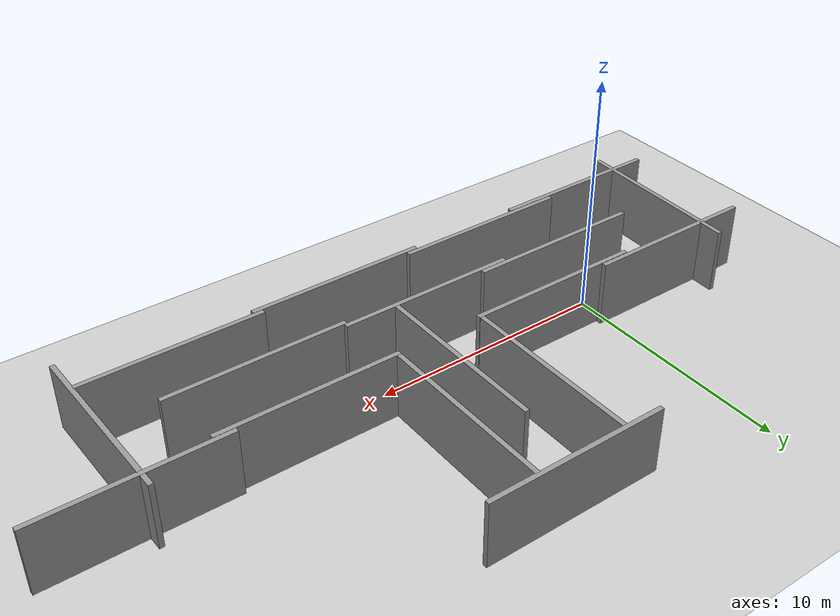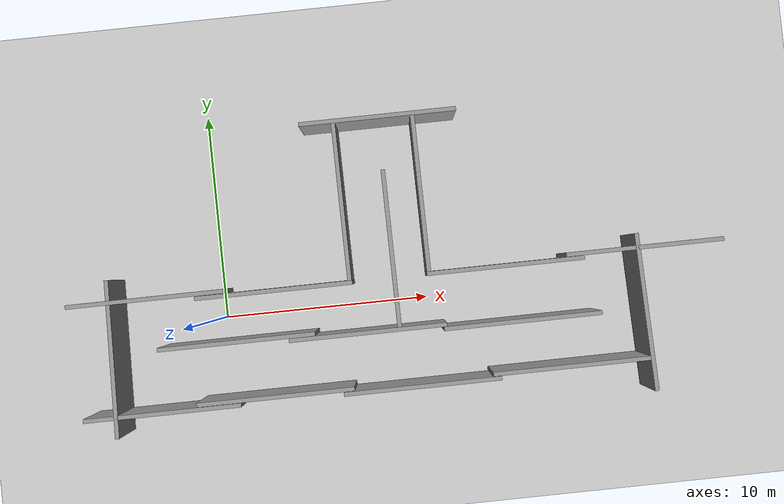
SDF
<sdf version="1.7">
 <world name="default">
  <light name="sun" type="directional">
   <pose>0 0 10 0 -0 0</pose>
   <diffuse>0.8 0.8 0.8 1</diffuse>
   <specular>0.2 0.2 0.2 1</specular>
   <attenuation>
    <range>1000</range>
    <constant>0.9</constant>
    <linear>0.01</linear>
    <quadratic>0.001</quadratic>
   </attenuation>
   <direction>-0.5 0.1 -0.9</direction>
   <spot><inner_angle>0</inner_angle><outer_angle>0</outer_angle><falloff>0</falloff></spot>
  </light>
  <model name="ground_plane">
   <static>1</static>
   <link name="link">
    <collision name="collision">
     <geometry><plane><normal>0 0 1</normal><size>100 100</size></plane></geometry>
     <surface>
      <contact><collide_bitmask>65535</collide_bitmask></contact>
      <friction><ode><mu>100</mu><mu2>50</mu2></ode></friction>
     </surface>
    </collision>
    <visual name="visual">
     <cast_shadows>0</cast_shadows>
     <geometry><plane><normal>0 0 1</normal><size>100 100</size></plane></geometry>
     <material>
      <script><uri>file://media/materials/scripts/gazebo.material</uri><name>Gazebo/Grey</name></script>
     </material>
    </visual>
   </link>
  </model>
  <gravity>0 0 -9.8</gravity>
  <magnetic_field>6e-06 2.3e-05 -4.2e-05</magnetic_field>
  <atmosphere type="adiabatic"/>
  <physics type="ode">
   <max_step_size>0.001</max_step_size>
   <real_time_factor>1</real_time_factor>
   <real_time_update_rate>1000</real_time_update_rate>
  </physics>
  <scene><ambient>0.4 0.4 0.4 1</ambient><background>0.7 0.7 0.7 1</background><shadows>1</shadows></scene>
  <spherical_coordinates>
   <surface_model>EARTH_WGS84</surface_model>
   <latitude_deg>0</latitude_deg>
   <longitude_deg>0</longitude_deg>
   <elevation>0</elevation>
   <heading_deg>0</heading_deg>
  </spherical_coordinates>
  <model name="grey_wall">
   <static>1</static>
   <link name="link">
    <pose>0 0 1.4 0 -0 0</pose>
    <collision name="collision"><geometry><box><size>7.5 0.2 2.8</size></box></geometry></collision>
    <visual name="visual">
     <cast_shadows>0</cast_shadows>
     <geometry><box><size>7.5 0.2 2.8</size></box></geometry>
     <material>
      <script>
       <uri>model://grey_wall/materials/scripts</uri>
       <uri>model://grey_wall/materials/textures</uri>
       <name>vrc/grey_wall</name>
      </script>
     </material>
    </visual>
   </link>
   <pose>2.73981 1.11385 0 0 -0 0</pose>
  </model>
  <model name="grey_wall_0">
   <static>1</static>
   <link name="link">
    <pose>0 0 1.4 0 -0 0</pose>
    <collision name="collision"><geometry><box><size>7.5 0.2 2.8</size></box></geometry></collision>
    <visual name="visual">
     <cast_shadows>0</cast_shadows>
     <geometry><box><size>7.5 0.2 2.8</size></box></geometry>
     <material>
      <script>
       <uri>model://grey_wall/materials/scripts</uri>
       <uri>model://grey_wall/materials/textures</uri>
       <name>vrc/grey_wall</name>
      </script>
     </material>
    </visual>
   </link>
   <pose>0.744778 -1.12185 0 0 -0 0</pose>
  </model>
  <model name="grey_wall_1">
   <static>1</static>
   <link name="link">
    <pose>0 0 1.4 0 -0 0</pose>
    <collision name="collision"><geometry><box><size>7.5 0.2 2.8</size></box></geometry></collision>
    <visual name="visual">
     <cast_shadows>0</cast_shadows>
     <geometry><box><size>7.5 0.2 2.8</size></box></geometry>
     <material>
      <script>
       <uri>model://grey_wall/materials/scripts</uri>
       <uri>model://grey_wall/materials/textures</uri>
       <name>vrc/grey_wall</name>
      </script>
     </material>
    </visual>
   </link>
   <pose>6.98572 -1.32438 0 0 -0 0</pose>
  </model>
  <model name="grey_wall_2">
   <static>1</static>
   <link name="link">
    <pose>0 0 1.4 0 -0 0</pose>
    <collision name="collision"><geometry><box><size>7.5 0.2 2.8</size></box></geometry></collision>
    <visual name="visual">
     <cast_shadows>0</cast_shadows>
     <geometry><box><size>7.5 0.2 2.8</size></box></geometry>
     <material>
      <script>
       <uri>model://grey_wall/materials/scripts</uri>
       <uri>model://grey_wall/materials/textures</uri>
       <name>vrc/grey_wall</name>
      </script>
     </material>
    </visual>
   </link>
   <pose>8.48614 2.52528 0 0 0 -1.56753</pose>
  </model>
  <model name="grey_wall_3">
   <static>1</static>
   <link name="link">
    <pose>0 0 1.4 0 -0 0</pose>
    <collision name="collision"><geometry><box><size>7.5 0.2 2.8</size></box></geometry></collision>
    <visual name="visual">
     <cast_shadows>0</cast_shadows>
     <geometry><box><size>7.5 0.2 2.8</size></box></geometry>
     <material>
      <script>
       <uri>model://grey_wall/materials/scripts</uri>
       <uri>model://grey_wall/materials/textures</uri>
       <name>vrc/grey_wall</name>
      </script>
     </material>
    </visual>
   </link>
   <pose>6.36019 4.96396 0 0 0 -1.56703</pose>
  </model>
  <model name="grey_wall_4">
   <static>1</static>
   <link name="link">
    <pose>0 0 1.4 0 -0 0</pose>
    <collision name="collision"><geometry><box><size>7.5 0.2 2.8</size></box></geometry></collision>
    <visual name="visual">
     <cast_shadows>0</cast_shadows>
     <geometry><box><size>7.5 0.2 2.8</size></box></geometry>
     <material>
      <script>
       <uri>model://grey_wall/materials/scripts</uri>
       <uri>model://grey_wall/materials/textures</uri>
       <name>vrc/grey_wall</name>
      </script>
     </material>
    </visual>
   </link>
   <pose>8.47193 8.81108 0 0 -0 0</pose>
  </model>
  <model name="grey_wall_5">
   <static>1</static>
   <link name="link">
    <pose>0 0 1.4 0 -0 0</pose>
    <collision name="collision"><geometry><box><size>7.5 0.2 2.8</size></box></geometry></collision>
    <visual name="visual">
     <cast_shadows>0</cast_shadows>
     <geometry><box><size>7.5 0.2 2.8</size></box></geometry>
     <material>
      <script>
       <uri>model://grey_wall/materials/scripts</uri>
       <uri>model://grey_wall/materials/textures</uri>
       <name>vrc/grey_wall</name>
      </script>
     </material>
    </visual>
   </link>
   <pose>10.137 4.99732 0 0 0 -1.56767</pose>
  </model>
  <model name="grey_wall_6">
   <static>1</static>
   <link name="link">
    <pose>0 0 1.4 0 -0 0</pose>
    <collision name="collision"><geometry><box><size>7.5 0.2 2.8</size></box></geometry></collision>
    <visual name="visual">
     <cast_shadows>0</cast_shadows>
     <geometry><box><size>7.5 0.2 2.8</size></box></geometry>
     <material>
      <script>
       <uri>model://grey_wall/materials/scripts</uri>
       <uri>model://grey_wall/materials/textures</uri>
       <name>vrc/grey_wall</name>
      </script>
     </material>
    </visual>
   </link>
   <pose>13.7963 1.14658 0 0 -0 0</pose>
  </model>
  <model name="grey_wall_7">
   <static>1</static>
   <link name="link">
    <pose>0 0 1.4 0 -0 0</pose>
    <collision name="collision"><geometry><box><size>7.5 0.2 2.8</size></box></geometry></collision>
    <visual name="visual">
     <cast_shadows>0</cast_shadows>
     <geometry><box><size>7.5 0.2 2.8</size></box></geometry>
     <material>
      <script>
       <uri>model://grey_wall/materials/scripts</uri>
       <uri>model://grey_wall/materials/textures</uri>
       <name>vrc/grey_wall</name>
      </script>
     </material>
    </visual>
   </link>
   <pose>14.3482 -1.52964 0 0 -0 0</pose>
  </model>
  <model name="grey_wall_8">
   <static>1</static>
   <link name="link">
    <pose>0 0 1.4 0 -0 0</pose>
    <collision name="collision"><geometry><box><size>7.5 0.2 2.8</size></box></geometry></collision>
    <visual name="visual">
     <cast_shadows>0</cast_shadows>
     <geometry><box><size>7.5 0.2 2.8</size></box></geometry>
     <material>
      <script>
       <uri>model://grey_wall/materials/scripts</uri>
       <uri>model://grey_wall/materials/textures</uri>
       <name>vrc/grey_wall</name>
      </script>
     </material>
    </visual>
   </link>
   <pose>20.4465 1.35441 0 0 -0 0</pose>
  </model>
  <model name="grey_wall_9">
   <static>1</static>
   <link name="link">
    <pose>0 0 1.4 0 -0 0</pose>
    <collision name="collision"><geometry><box><size>7.5 0.2 2.8</size></box></geometry></collision>
    <visual name="visual">
     <cast_shadows>0</cast_shadows>
     <geometry><box><size>7.5 0.2 2.8</size></box></geometry>
     <material>
      <script>
       <uri>model://grey_wall/materials/scripts</uri>
       <uri>model://grey_wall/materials/textures</uri>
       <name>vrc/grey_wall</name>
      </script>
     </material>
    </visual>
   </link>
   <pose>20.1892 -1.71965 0 0 0 -1.54589</pose>
  </model>
  <model name="grey_wall_10">
   <static>1</static>
   <link name="link">
    <pose>0 0 1.4 0 -0 0</pose>
    <collision name="collision"><geometry><box><size>7.5 0.2 2.8</size></box></geometry></collision>
    <visual name="visual">
     <cast_shadows>0</cast_shadows>
     <geometry><box><size>7.5 0.2 2.8</size></box></geometry>
     <material>
      <script>
       <uri>model://grey_wall/materials/scripts</uri>
       <uri>model://grey_wall/materials/textures</uri>
       <name>vrc/grey_wall</name>
      </script>
     </material>
    </visual>
   </link>
   <pose>16.425 -3.90031 0 0 -0 0</pose>
  </model>
  <model name="grey_wall_11">
   <static>1</static>
   <link name="link">
    <pose>0 0 1.4 0 -0 0</pose>
    <collision name="collision"><geometry><box><size>7.5 0.2 2.8</size></box></geometry></collision>
    <visual name="visual">
     <cast_shadows>0</cast_shadows>
     <geometry><box><size>7.5 0.2 2.8</size></box></geometry>
     <material>
      <script>
       <uri>model://grey_wall/materials/scripts</uri>
       <uri>model://grey_wall/materials/textures</uri>
       <name>vrc/grey_wall</name>
      </script>
     </material>
    </visual>
   </link>
   <pose>9.31688 -4.11034 0 0 -0 0</pose>
  </model>
  <model name="grey_wall_12">
   <static>1</static>
   <link name="link">
    <pose>0 0 1.4 0 -0 0</pose>
    <collision name="collision"><geometry><box><size>7.5 0.2 2.8</size></box></geometry></collision>
    <visual name="visual">
     <cast_shadows>0</cast_shadows>
     <geometry><box><size>7.5 0.2 2.8</size></box></geometry>
     <material>
      <script>
       <uri>model://grey_wall/materials/scripts</uri>
       <uri>model://grey_wall/materials/textures</uri>
       <name>vrc/grey_wall</name>
      </script>
     </material>
    </visual>
   </link>
   <pose>2.34394 -3.89531 0 0 -0 0</pose>
  </model>
  <model name="grey_wall_13">
   <static>1</static>
   <link name="link">
    <pose>0 0 1.4 0 -0 0</pose>
    <collision name="collision"><geometry><box><size>7.5 0.2 2.8</size></box></geometry></collision>
    <visual name="visual">
     <cast_shadows>0</cast_shadows>
     <geometry><box><size>7.5 0.2 2.8</size></box></geometry>
     <material>
      <script>
       <uri>model://grey_wall/materials/scripts</uri>
       <uri>model://grey_wall/materials/textures</uri>
       <name>vrc/grey_wall</name>
      </script>
     </material>
    </visual>
   </link>
   <pose>-3.05701 -4.10398 0 0 -0 0</pose>
  </model>
  <model name="grey_wall_14">
   <static>1</static>
   <link name="link">
    <pose>0 0 1.4 0 -0 0</pose>
    <collision name="collision"><geometry><box><size>7.5 0.2 2.8</size></box></geometry></collision>
    <visual name="visual">
     <cast_shadows>0</cast_shadows>
     <geometry><box><size>7.5 0.2 2.8</size></box></geometry>
     <material>
      <script>
       <uri>model://grey_wall/materials/scripts</uri>
       <uri>model://grey_wall/materials/textures</uri>
       <name>vrc/grey_wall</name>
      </script>
     </material>
    </visual>
   </link>
   <pose>-3.37836 1.33363 0 0 -0 0</pose>
  </model>
  <model name="grey_wall_15">
   <static>1</static>
   <link name="link">
    <pose>0 0 1.4 0 -0 0</pose>
    <collision name="collision"><geometry><box><size>7.5 0.2 2.8</size></box></geometry></collision>
    <visual name="visual">
     <cast_shadows>0</cast_shadows>
     <geometry><box><size>7.5 0.2 2.8</size></box></geometry>
     <material>
      <script>
       <uri>model://grey_wall/materials/scripts</uri>
       <uri>model://grey_wall/materials/textures</uri>
       <name>vrc/grey_wall</name>
      </script>
     </material>
    </visual>
   </link>
   <pose>-5.18122 -1.33769 0 0 0 -1.59653</pose>
  </model>
 </world>
</sdf>
